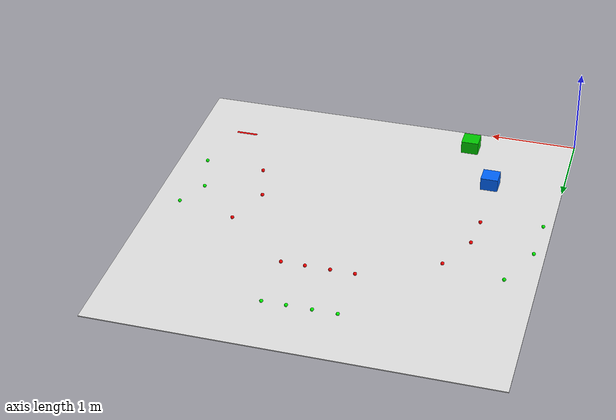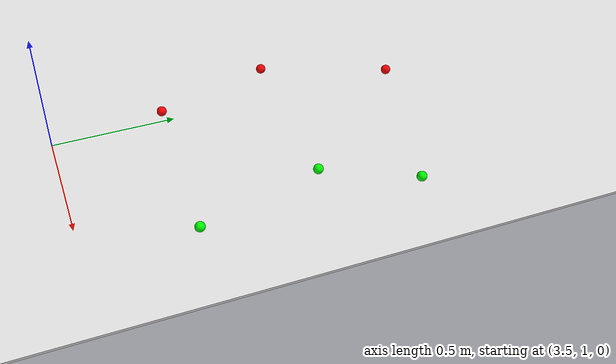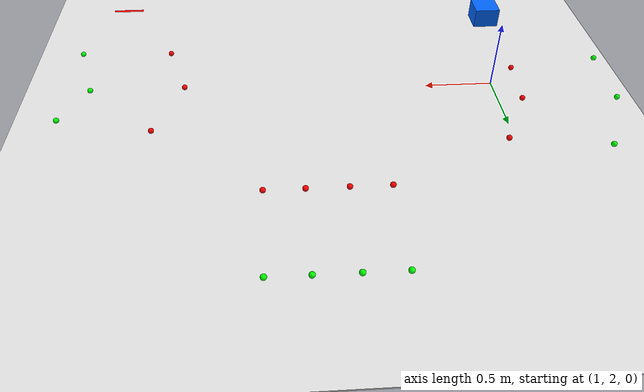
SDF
<sdf version="1.9">
 <world name="arena_scaled">
  <physics name="1ms" type="ignored">
   <max_step_size>0.001</max_step_size>
   <real_time_factor>1</real_time_factor>
  </physics>
  <plugin filename="gz-sim-physics-system" name="gz::sim::systems::Physics"/>
  <plugin filename="gz-sim-user-commands-system" name="gz::sim::systems::UserCommands"/>
  <plugin filename="gz-sim-scene-broadcaster-system" name="gz::sim::systems::SceneBroadcaster"/>
  <plugin filename="gz-sim-sensors-system" name="gz::sim::systems::Sensors">
   <render_engine>ogre2</render_engine>
  </plugin>
  <plugin filename="gz-sim-imu-system" name="gz::sim::systems::Imu"/>
  <scene><ambient>0.6 0.6 0.6 1</ambient><background>0.2 0.2 0.25 1</background><shadows>false</shadows></scene>
  <light type="directional" name="sun">
   <cast_shadows>false</cast_shadows>
   <pose>0 0 10 0 0 0</pose>
   <diffuse>0.9 0.9 0.9 1</diffuse>
   <specular>0.2 0.2 0.2 1</specular>
   <direction>-0.3 0.2 -1</direction>
  </light>
  <model name="ground_plane_arena">
   <static>true</static>
   <link name="link">
    <pose>2.2500 2.2500 -0.00500000 0 0 0</pose>
    <collision name="c"><geometry><box><size>4.5 4.5 0.01</size></box></geometry></collision>
    <visual name="v">
     <geometry><box><size>4.5 4.5 0.01</size></box></geometry>
     <material><ambient>0.9 0.9 0.9 1</ambient><diffuse>0.9 0.9 0.9 1</diffuse></material>
    </visual>
   </link>
  </model>
  <model name="box_start_finish">
   <static>true</static>
   <link name="link">
    <pose>3.9000 0.7040 0.00002500 0 0 0</pose>
    <collision name="c"><geometry><box><size>0.25 0.03 5e-05</size></box></geometry></collision>
    <visual name="v">
     <geometry><box><size>0.25 0.03 5e-05</size></box></geometry>
     <material><ambient>1 0 0 1</ambient><diffuse>1 0 0 1</diffuse></material>
    </visual>
   </link>
  </model>
  <model name="box_capture_blue">
   <static>true</static>
   <link name="link">
    <pose>0.8295 1.0565 0.07500000 0 0 0</pose>
    <collision name="c"><geometry><box><size>0.2 0.2 0.15</size></box></geometry></collision>
    <visual name="v">
     <geometry><box><size>0.2 0.2 0.15</size></box></geometry>
     <material><ambient>0 0.4 1 1</ambient><diffuse>0 0.4 1 1</diffuse></material>
    </visual>
   </link>
  </model>
  <model name="box_capture_green">
   <static>true</static>
   <link name="link">
    <pose>1.1970 0.3455 0.07500000 0 0 0</pose>
    <collision name="c"><geometry><box><size>0.2 0.2 0.15</size></box></geometry></collision>
    <visual name="v">
     <geometry><box><size>0.2 0.2 0.15</size></box></geometry>
     <material><ambient>0 0.8 0 1</ambient><diffuse>0 0.8 0 1</diffuse></material>
    </visual>
   </link>
  </model>
  <model name="ball_green_top_1">
   <static>true</static>
   <link name="link">
    <pose>1.9100 3.8000 0.02 0 0 0</pose>
    <collision name="c"><geometry><sphere><radius>0.02</radius></sphere></geometry></collision>
    <visual name="v">
     <geometry><sphere><radius>0.02</radius></sphere></geometry>
     <material><ambient>0 1 0 1</ambient><diffuse>0 1 0 1</diffuse></material>
    </visual>
   </link>
  </model>
  <model name="ball_green_top_2">
   <static>true</static>
   <link name="link">
    <pose>2.1860 3.8000 0.02 0 0 0</pose>
    <collision name="c"><geometry><sphere><radius>0.02</radius></sphere></geometry></collision>
    <visual name="v">
     <geometry><sphere><radius>0.02</radius></sphere></geometry>
     <material><ambient>0 1 0 1</ambient><diffuse>0 1 0 1</diffuse></material>
    </visual>
   </link>
  </model>
  <model name="ball_green_top_3">
   <static>true</static>
   <link name="link">
    <pose>2.4670 3.8000 0.02 0 0 0</pose>
    <collision name="c"><geometry><sphere><radius>0.02</radius></sphere></geometry></collision>
    <visual name="v">
     <geometry><sphere><radius>0.02</radius></sphere></geometry>
     <material><ambient>0 1 0 1</ambient><diffuse>0 1 0 1</diffuse></material>
    </visual>
   </link>
  </model>
  <model name="ball_green_top_4">
   <static>true</static>
   <link name="link">
    <pose>2.7370 3.8000 0.02 0 0 0</pose>
    <collision name="c"><geometry><sphere><radius>0.02</radius></sphere></geometry></collision>
    <visual name="v">
     <geometry><sphere><radius>0.02</radius></sphere></geometry>
     <material><ambient>0 1 0 1</ambient><diffuse>0 1 0 1</diffuse></material>
    </visual>
   </link>
  </model>
  <model name="ball_green_left_1">
   <static>true</static>
   <link name="link">
    <pose>0.3552 2.7874 0.02 0 0 0</pose>
    <collision name="c"><geometry><sphere><radius>0.02</radius></sphere></geometry></collision>
    <visual name="v">
     <geometry><sphere><radius>0.02</radius></sphere></geometry>
     <material><ambient>0 1 0 1</ambient><diffuse>0 1 0 1</diffuse></material>
    </visual>
   </link>
  </model>
  <model name="ball_green_left_2">
   <static>true</static>
   <link name="link">
    <pose>0.1248 2.2563 0.02 0 0 0</pose>
    <collision name="c"><geometry><sphere><radius>0.02</radius></sphere></geometry></collision>
    <visual name="v">
     <geometry><sphere><radius>0.02</radius></sphere></geometry>
     <material><ambient>0 1 0 1</ambient><diffuse>0 1 0 1</diffuse></material>
    </visual>
   </link>
  </model>
  <model name="ball_green_left_3">
   <static>true</static>
   <link name="link">
    <pose>0.1034 1.7269 0.02 0 0 0</pose>
    <collision name="c"><geometry><sphere><radius>0.02</radius></sphere></geometry></collision>
    <visual name="v">
     <geometry><sphere><radius>0.02</radius></sphere></geometry>
     <material><ambient>0 1 0 1</ambient><diffuse>0 1 0 1</diffuse></material>
    </visual>
   </link>
  </model>
  <model name="ball_green_right_1">
   <static>true</static>
   <link name="link">
    <pose>4.1890 2.2967 0.02 0 0 0</pose>
    <collision name="c"><geometry><sphere><radius>0.02</radius></sphere></geometry></collision>
    <visual name="v">
     <geometry><sphere><radius>0.02</radius></sphere></geometry>
     <material><ambient>0 1 0 1</ambient><diffuse>0 1 0 1</diffuse></material>
    </visual>
   </link>
  </model>
  <model name="ball_green_right_2">
   <static>true</static>
   <link name="link">
    <pose>4.0145 1.9410 0.02 0 0 0</pose>
    <collision name="c"><geometry><sphere><radius>0.02</radius></sphere></geometry></collision>
    <visual name="v">
     <geometry><sphere><radius>0.02</radius></sphere></geometry>
     <material><ambient>0 1 0 1</ambient><diffuse>0 1 0 1</diffuse></material>
    </visual>
   </link>
  </model>
  <model name="ball_green_right_3">
   <static>true</static>
   <link name="link">
    <pose>4.1577 1.4295 0.02 0 0 0</pose>
    <collision name="c"><geometry><sphere><radius>0.02</radius></sphere></geometry></collision>
    <visual name="v">
     <geometry><sphere><radius>0.02</radius></sphere></geometry>
     <material><ambient>0 1 0 1</ambient><diffuse>0 1 0 1</diffuse></material>
    </visual>
   </link>
  </model>
  <model name="ball_red_top_1">
   <static>true</static>
   <link name="link">
    <pose>1.9100 3.1000 0.02 0 0 0</pose>
    <collision name="c"><geometry><sphere><radius>0.02</radius></sphere></geometry></collision>
    <visual name="v">
     <geometry><sphere><radius>0.02</radius></sphere></geometry>
     <material><ambient>1 0 0 1</ambient><diffuse>1 0 0 1</diffuse></material>
    </visual>
   </link>
  </model>
  <model name="ball_red_top_2">
   <static>true</static>
   <link name="link">
    <pose>2.1860 3.1000 0.02 0 0 0</pose>
    <collision name="c"><geometry><sphere><radius>0.02</radius></sphere></geometry></collision>
    <visual name="v">
     <geometry><sphere><radius>0.02</radius></sphere></geometry>
     <material><ambient>1 0 0 1</ambient><diffuse>1 0 0 1</diffuse></material>
    </visual>
   </link>
  </model>
  <model name="ball_red_top_3">
   <static>true</static>
   <link name="link">
    <pose>2.4670 3.1000 0.02 0 0 0</pose>
    <collision name="c"><geometry><sphere><radius>0.02</radius></sphere></geometry></collision>
    <visual name="v">
     <geometry><sphere><radius>0.02</radius></sphere></geometry>
     <material><ambient>1 0 0 1</ambient><diffuse>1 0 0 1</diffuse></material>
    </visual>
   </link>
  </model>
  <model name="ball_red_top_4">
   <static>true</static>
   <link name="link">
    <pose>2.7370 3.1000 0.02 0 0 0</pose>
    <collision name="c"><geometry><sphere><radius>0.02</radius></sphere></geometry></collision>
    <visual name="v">
     <geometry><sphere><radius>0.02</radius></sphere></geometry>
     <material><ambient>1 0 0 1</ambient><diffuse>1 0 0 1</diffuse></material>
    </visual>
   </link>
  </model>
  <model name="ball_red_left_1">
   <static>true</static>
   <link name="link">
    <pose>1.0468 2.6796 0.02 0 0 0</pose>
    <collision name="c"><geometry><sphere><radius>0.02</radius></sphere></geometry></collision>
    <visual name="v">
     <geometry><sphere><radius>0.02</radius></sphere></geometry>
     <material><ambient>1 0 0 1</ambient><diffuse>1 0 0 1</diffuse></material>
    </visual>
   </link>
  </model>
  <model name="ball_red_left_2">
   <static>true</static>
   <link name="link">
    <pose>0.8242 2.2257 0.02 0 0 0</pose>
    <collision name="c"><geometry><sphere><radius>0.02</radius></sphere></geometry></collision>
    <visual name="v">
     <geometry><sphere><radius>0.02</radius></sphere></geometry>
     <material><ambient>1 0 0 1</ambient><diffuse>1 0 0 1</diffuse></material>
    </visual>
   </link>
  </model>
  <model name="ball_red_left_3">
   <static>true</static>
   <link name="link">
    <pose>0.7966 1.8241 0.02 0 0 0</pose>
    <collision name="c"><geometry><sphere><radius>0.02</radius></sphere></geometry></collision>
    <visual name="v">
     <geometry><sphere><radius>0.02</radius></sphere></geometry>
     <material><ambient>1 0 0 1</ambient><diffuse>1 0 0 1</diffuse></material>
    </visual>
   </link>
  </model>
  <model name="ball_red_right_1">
   <static>true</static>
   <link name="link">
    <pose>3.5070 2.4543 0.02 0 0 0</pose>
    <collision name="c"><geometry><sphere><radius>0.02</radius></sphere></geometry></collision>
    <visual name="v">
     <geometry><sphere><radius>0.02</radius></sphere></geometry>
     <material><ambient>1 0 0 1</ambient><diffuse>1 0 0 1</diffuse></material>
    </visual>
   </link>
  </model>
  <model name="ball_red_right_2">
   <static>true</static>
   <link name="link">
    <pose>3.3145 1.9410 0.02 0 0 0</pose>
    <collision name="c"><geometry><sphere><radius>0.02</radius></sphere></geometry></collision>
    <visual name="v">
     <geometry><sphere><radius>0.02</radius></sphere></geometry>
     <material><ambient>1 0 0 1</ambient><diffuse>1 0 0 1</diffuse></material>
    </visual>
   </link>
  </model>
  <model name="ball_red_right_3">
   <static>true</static>
   <link name="link">
    <pose>3.4583 1.4605 0.02 0 0 0</pose>
    <collision name="c"><geometry><sphere><radius>0.02</radius></sphere></geometry></collision>
    <visual name="v">
     <geometry><sphere><radius>0.02</radius></sphere></geometry>
     <material><ambient>1 0 0 1</ambient><diffuse>1 0 0 1</diffuse></material>
    </visual>
   </link>
  </model>
 </world>
</sdf>
